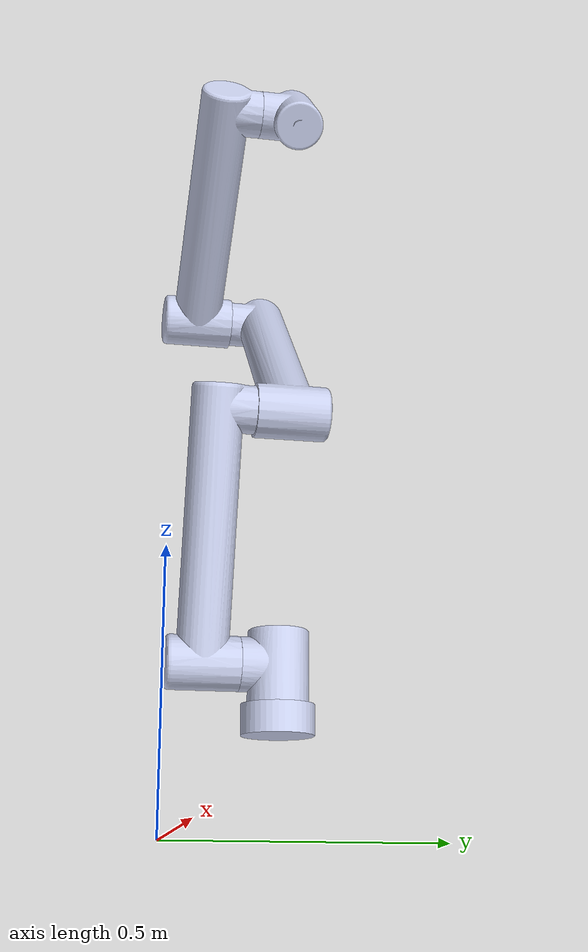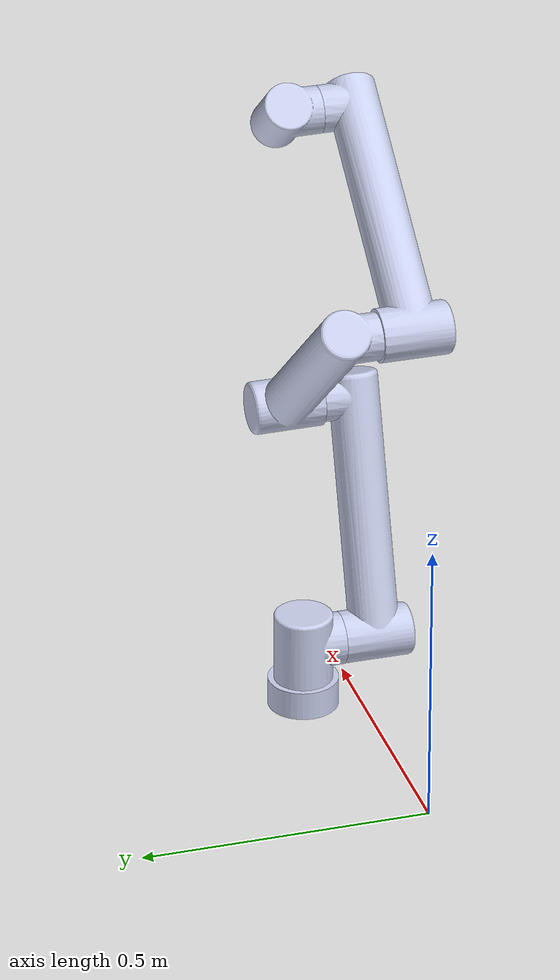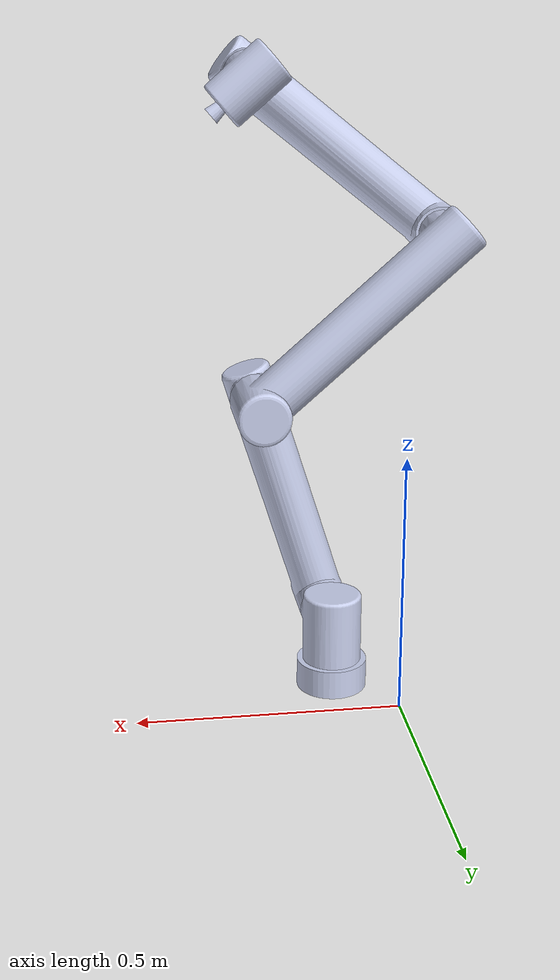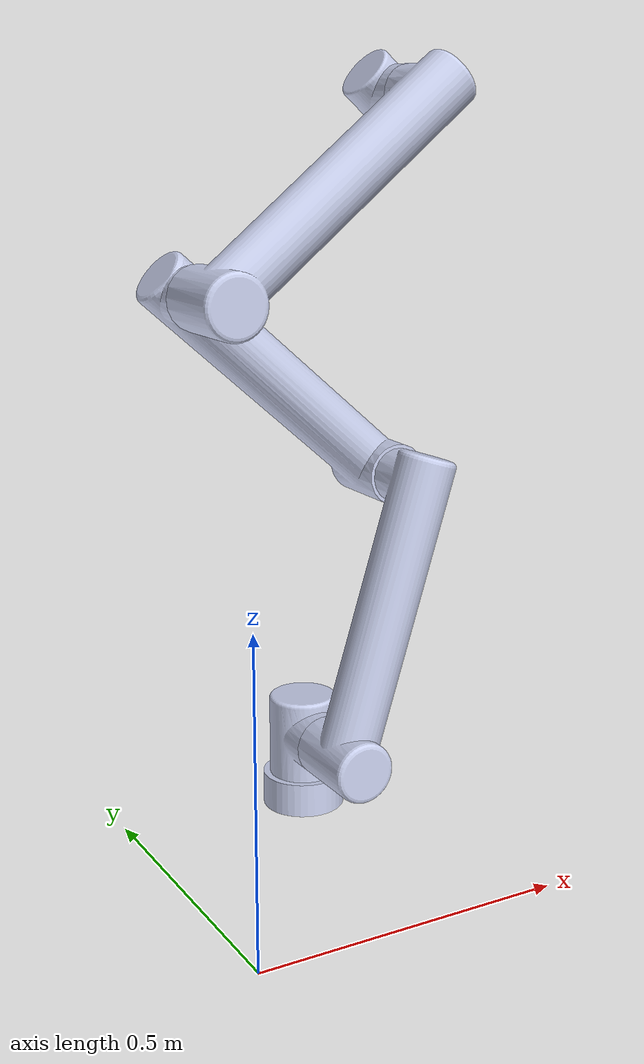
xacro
<?xml version="1.0" encoding="utf-8" ?>
<!-- |    This document was autogenerated by xacro from /home/george/openmanipulator_ws/src/ur5_robot_manipulator/urdf/ur5_robot_manipulator.xacro | -->
<!-- |    EDITING THIS FILE BY HAND IS NOT RECOMMENDED                                 | -->
<!-- |    This document was autogenerated by xacro from /home/george/openmanipulator_ws/src/ur5_robot_manipulator/urdf/ur5_robot_manipulator.xacro | -->
<!-- |    EDITING THIS FILE BY HAND IS NOT RECOMMENDED                                 | -->
<robot name="ur5_robot_manipulator">
    <link name="world" />
    <joint name="fixed" type="fixed">
        <parent link="world" />
        <origin rpy="0 0 1.9" xyz="0.16492 .15 -0.11" />
        <child link="base_link" />
    </joint>
    <link name="base_link">

<inertial>
            <origin rpy="0 0 0" xyz="0.021007 0.28947 0.0061873" />
            <mass value="10.0" />
            <inertia ixx="0.00062585" ixy="-1.1353E-22" ixz="1.1112E-20" iyy="0.0010178" iyz="1.2109E-22" izz="0.00062585" />
        </inertial>

        <visual>
            <origin rpy="0 0 0" xyz="0 0 0" />
            <geometry>
                <mesh filename="package://ur5_robot_manipulator/meshes/base_link.STL" />
            </geometry>
            <material name="">
                <color rgba="0.79216 0.81961 0.93333 1" />
            </material>
        </visual>
        <collision>
            <origin rpy="0 0 0" xyz="0 0 0" />
            <geometry>
                <mesh filename="package://ur5_robot_manipulator/meshes/base_link.STL" />
            </geometry>
        </collision>
    </link>
    <link name="shoulder_Link">

<inertial>
            <origin rpy="0 0 0" xyz="0.0065578 0.075603 1.1315E-07" />
            <mass value="6.0823" />
            <inertia ixx="0.0018986" ixy="-2.0558E-05" ixz="4.7959E-09" iyy="0.0016125" iyz="9.8203E-10" izz="0.0021625" />
        </inertial>

        <visual>
            <origin rpy="0 0 0" xyz="0 0 0" />
            <geometry>
                <mesh filename="package://ur5_robot_manipulator/meshes/shoulder_Link.STL" />
            </geometry>
            <material name="">
                <color rgba="0.79216 0.81961 0.93333 1" />
            </material>
        </visual>
        <collision>
            <origin rpy="0 0 0" xyz="0 0 0" />
            <geometry>
                <mesh filename="package://ur5_robot_manipulator/meshes/shoulder_Link.STL" />
            </geometry>
        </collision>
    </link>
    <joint name="shoulder_base_joint" type="revolute">
        <origin rpy="1.5708 0 2.8208" xyz="0.021007 -0.0061873 0.29955" />
        <parent link="base_link" />
        <child link="shoulder_Link" />
        <axis xyz="0 1 0" />
        <limit effort="0.25" lower="-2.5" upper="2.5" velocity="1" />
    </joint>
    <link name="arm_Link">

<inertial>
            <origin rpy="0 0 0" xyz="0.143782974771491 0.19355146427782 -4.02693275641797E-07" />
            <mass value="4.0" />
            <inertia ixx="0.0740663665718892" ixy="0.00125590529074301" ixz="9.5243675255624E-09" iyy="0.00369985043089469" iyz="-2.35227359024687E-07" izz="0.0747821188201623" />
        </inertial>

        <visual>
            <origin rpy="0 0 0" xyz="0 0 0" />
            <geometry>
                <mesh filename="package://ur5_robot_manipulator/meshes/arm_Link.STL" />
            </geometry>
            <material name="">
                <color rgba="0.792156862745098 0.819607843137255 0.933333333333333 1" />
            </material>
        </visual>
        <collision>
            <origin rpy="0 0 0" xyz="0 0 0" />
            <geometry>
                <mesh filename="package://ur5_robot_manipulator/meshes/arm_Link.STL" />
            </geometry>
        </collision>
    </link>
    <joint name="shoulder_arm_joint" type="revolute">
        <origin rpy="-0.30332 0 0" xyz="-0.020615 0.0785 0" />
        <parent link="shoulder_Link" />
        <child link="arm_Link" />
        <axis xyz="1 0 0" />
        <limit effort="0.25" lower="-2.5" upper="2.5" velocity="1" />
    </joint>
    <link name="arm2_Link">

<inertial>
            <origin rpy="0 0 0" xyz="-0.0264479695995214 0.19355144403667 -3.99274730167321E-07" />
            <mass value="2.0" />
            <inertia ixx="0.0740663496101479" ixy="0.00125590738579559" ixz="1.16925686329331E-08" iyy="0.00369984819211261" iyz="-2.36422770259368E-07" izz="0.0747821027063394" />
        </inertial>

        <visual>
            <origin rpy="0 0 0" xyz="0 0 0" />
            <geometry>
                <mesh filename="package://ur5_robot_manipulator/meshes/arm2_Link.STL" />
            </geometry>
            <material name="">
                <color rgba="0.792156862745098 0.819607843137255 0.933333333333333 1" />
            </material>
        </visual>
        <collision>
            <origin rpy="0 0 0" xyz="0 0 0" />
            <geometry>
                <mesh filename="package://ur5_robot_manipulator/meshes/arm2_Link.STL" />
            </geometry>
        </collision>
    </link>
    <joint name="arm_arm2_joint" type="revolute">
        <origin rpy="1.9882 0 3.1416" xyz="0 0.41 0" />
        <parent link="arm_Link" />
        <child link="arm2_Link" />
        <axis xyz="1 0 0" />
        <limit effort="0.25" lower="-2.5" upper="2.5" velocity="1" />
    </joint>
    <link name="arm3_Link">

<inertial>
            <origin rpy="0 0 0" xyz="0.206202752776446 0.193551444410303 -3.97305547905624E-07" />
            <mass value="1.0" />
            <inertia ixx="0.0740663485863286" ixy="0.00125590750417122" ixz="1.1796988261259E-08" iyy="0.00369984825268348" iyz="-2.36223663448143E-07" izz="0.0747821017315746" />
        </inertial>

        <visual>
            <origin rpy="0 0 0" xyz="0 0 0" />
            <geometry>
                <mesh filename="package://ur5_robot_manipulator/meshes/arm3_Link.STL" />
            </geometry>
            <material name="">
                <color rgba="0.792156862745098 0.819607843137255 0.933333333333333 1" />
            </material>
        </visual>
        <collision>
            <origin rpy="0 0 0" xyz="0 0 0" />
            <geometry>
                <mesh filename="package://ur5_robot_manipulator/meshes/arm3_Link.STL" />
            </geometry>
        </collision>
    </link>
    <joint name="arm2_arm3_joint" type="revolute">
        <origin rpy="1.3976 0 3.1416" xyz="0.06242 0.41 0" />
        <parent link="arm2_Link" />
        <child link="arm3_Link" />
        <axis xyz="1 0 0" />
        <limit effort="0.25" lower="-2.5" upper="2.5" velocity="1" />
    </joint>
    <link name="end_effector_Link">

<inertial>
            <origin rpy="0 0 0" xyz="0.00816424968547602 -8.40535159252198E-08 0.0938564384562105" />
            <mass value="0.1" />
            <inertia ixx="0.000745536516391558" ixy="-2.85339379451884E-09" ixz="4.58218121411216E-05" iyy="0.00111723612968963" iyz="-1.3944512217151E-09" izz="0.000952630970924235" />
        </inertial>

        <visual>
            <origin rpy="0 0 0" xyz="0 0 0" />
            <geometry>
                <mesh filename="package://ur5_robot_manipulator/meshes/end_effector_Link.STL" />
            </geometry>
            <material name="">
                <color rgba="0.792156862745098 0.819607843137255 0.933333333333333 1" />
            </material>
        </visual>
        <collision>
            <origin rpy="0 0 0" xyz="0 0 0" />
            <geometry>
                <mesh filename="package://ur5_robot_manipulator/meshes/end_effector_Link.STL" />
            </geometry>
        </collision>
    </link>
    <joint name="arm3_end_effector_joint" type="revolute">
        <origin rpy="1.5708 1.3802 1.5708" xyz="0.0012584 0.41 0" />
        <parent link="arm3_Link" />
        <child link="end_effector_Link" />
        <axis xyz="0 0 1" />
        <limit effort="0.25" lower="-2.5" upper="2.5" velocity="1" />
    </joint>

<transmission name="trans_shoulder_base_joint">
        <type>transmission_interface/SimpleTransmission</type>
        <joint name="shoulder_base_joint">
            <hardwareInterface>hardware_interface/PositionJointInterface</hardwareInterface>
        </joint>
        <actuator name="shoulder_base_joint_motor">
            <hardwareInterface>hardware_interface/PositionJointInterface</hardwareInterface>
            <mechanicalReduction>1</mechanicalReduction>
        </actuator>
    </transmission>
    <transmission name="trans_shoulder_arm_joint">
        <type>transmission_interface/SimpleTransmission</type>
        <joint name="shoulder_arm_joint">
            <hardwareInterface>hardware_interface/PositionJointInterface</hardwareInterface>
        </joint>
        <actuator name="shoulder_arm_joint_motor">
            <hardwareInterface>hardware_interface/PositionJointInterface</hardwareInterface>
            <mechanicalReduction>1</mechanicalReduction>
        </actuator>
    </transmission>
    <transmission name="trans_arm_arm2_joint">
        <type>transmission_interface/SimpleTransmission</type>
        <joint name="arm_arm2_joint">
            <hardwareInterface>hardware_interface/PositionJointInterface</hardwareInterface>
        </joint>
        <actuator name="arm_arm2_joint_motor">
            <hardwareInterface>hardware_interface/PositionJointInterface</hardwareInterface>
            <mechanicalReduction>1</mechanicalReduction>
        </actuator>
    </transmission>
    <transmission name="trans_arm2_arm3_joint">
        <type>transmission_interface/SimpleTransmission</type>
        <joint name="arm2_arm3_joint">
            <hardwareInterface>hardware_interface/PositionJointInterface</hardwareInterface>
        </joint>
        <actuator name="arm2_arm3_joint_motor">
            <hardwareInterface>hardware_interface/PositionJointInterface</hardwareInterface>
            <mechanicalReduction>1</mechanicalReduction>
        </actuator>
    </transmission>
    <transmission name="trans_arm3_end_effector_joint">
        <type>transmission_interface/SimpleTransmission</type>
        <joint name="arm3_end_effector_joint">
            <hardwareInterface>hardware_interface/PositionJointInterface</hardwareInterface>
        </joint>
        <actuator name="arm3_end_effector_joint_motor">
            <hardwareInterface>hardware_interface/PositionJointInterface</hardwareInterface>
            <mechanicalReduction>1</mechanicalReduction>
        </actuator>
    </transmission>
    <gazebo>
        <plugin filename="libgazebo_ros_control.so" name="gazebo_ros_control">
            <robotNamespace>/</robotNamespace>
        </plugin>
    </gazebo>
    <transmission name="trans_shoulder_base_joint">
        <type>transmission_interface/SimpleTransmission</type>
        <joint name="shoulder_base_joint">
            <hardwareInterface>hardware_interface/PositionJointInterface</hardwareInterface>
        </joint>
        <actuator name="shoulder_base_joint_motor">
            <hardwareInterface>hardware_interface/PositionJointInterface</hardwareInterface>
            <mechanicalReduction>1</mechanicalReduction>
        </actuator>
    </transmission>
    <transmission name="trans_shoulder_arm_joint">
        <type>transmission_interface/SimpleTransmission</type>
        <joint name="shoulder_arm_joint">
            <hardwareInterface>hardware_interface/PositionJointInterface</hardwareInterface>
        </joint>
        <actuator name="shoulder_arm_joint_motor">
            <hardwareInterface>hardware_interface/PositionJointInterface</hardwareInterface>
            <mechanicalReduction>1</mechanicalReduction>
        </actuator>
    </transmission>
    <transmission name="trans_arm_arm2_joint">
        <type>transmission_interface/SimpleTransmission</type>
        <joint name="arm_arm2_joint">
            <hardwareInterface>hardware_interface/PositionJointInterface</hardwareInterface>
        </joint>
        <actuator name="arm_arm2_joint_motor">
            <hardwareInterface>hardware_interface/PositionJointInterface</hardwareInterface>
            <mechanicalReduction>1</mechanicalReduction>
        </actuator>
    </transmission>
    <transmission name="trans_arm2_arm3_joint">
        <type>transmission_interface/SimpleTransmission</type>
        <joint name="arm2_arm3_joint">
            <hardwareInterface>hardware_interface/PositionJointInterface</hardwareInterface>
        </joint>
        <actuator name="arm2_arm3_joint_motor">
            <hardwareInterface>hardware_interface/PositionJointInterface</hardwareInterface>
            <mechanicalReduction>1</mechanicalReduction>
        </actuator>
    </transmission>
    <transmission name="trans_arm3_end_effector_joint">
        <type>transmission_interface/SimpleTransmission</type>
        <joint name="arm3_end_effector_joint">
            <hardwareInterface>hardware_interface/PositionJointInterface</hardwareInterface>
        </joint>
        <actuator name="arm3_end_effector_joint_motor">
            <hardwareInterface>hardware_interface/PositionJointInterface</hardwareInterface>
            <mechanicalReduction>1</mechanicalReduction>
        </actuator>
    </transmission>
    <gazebo>
        <plugin name="gazebo_ros_control" filename="libgazebo_ros_control.so">
            <robotNamespace>/</robotNamespace>
        </plugin>
    </gazebo>
</robot>
